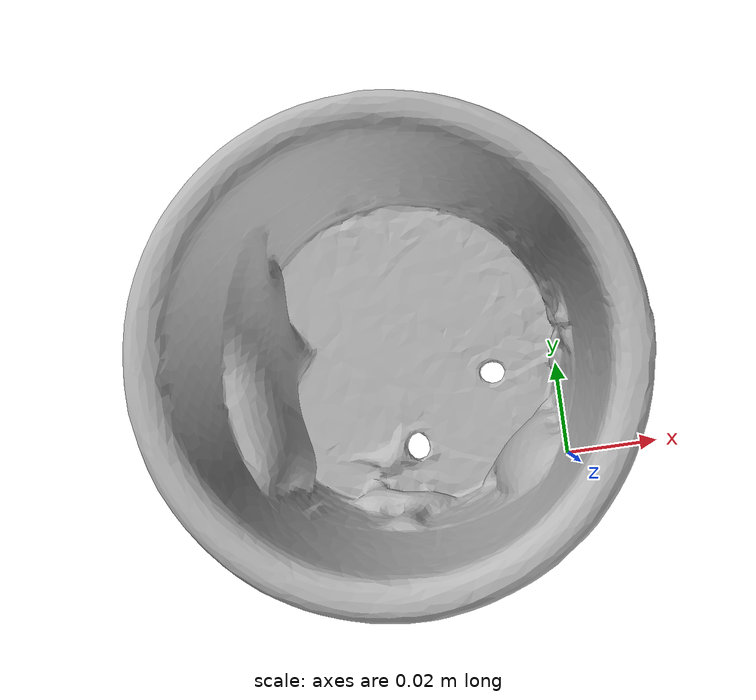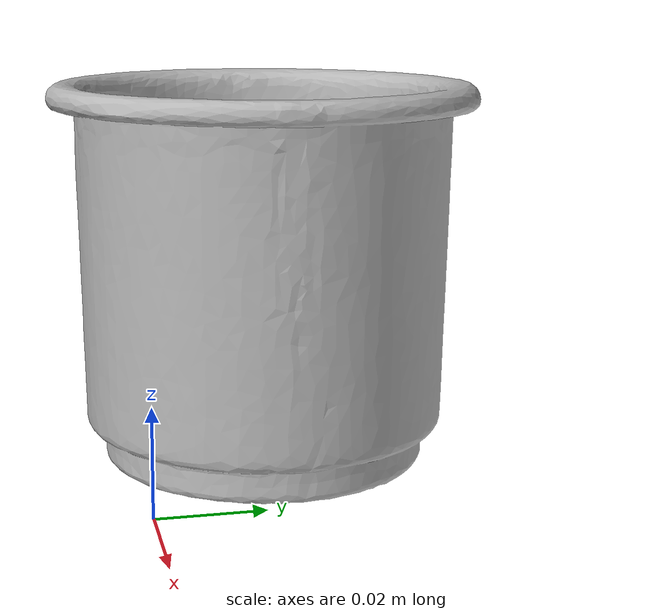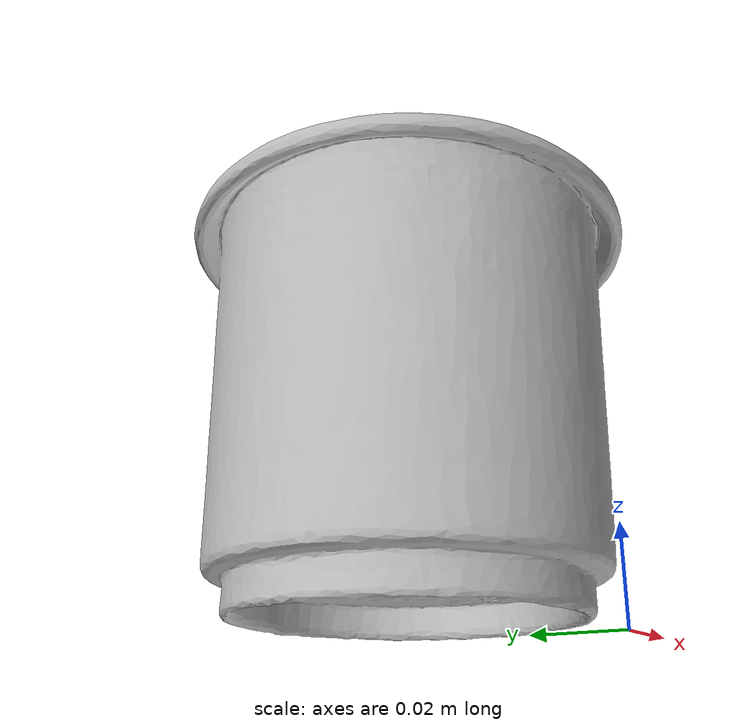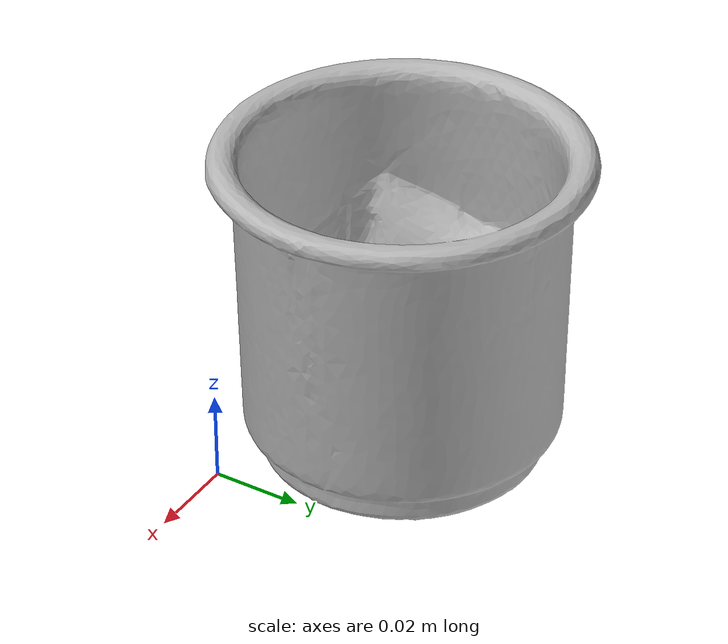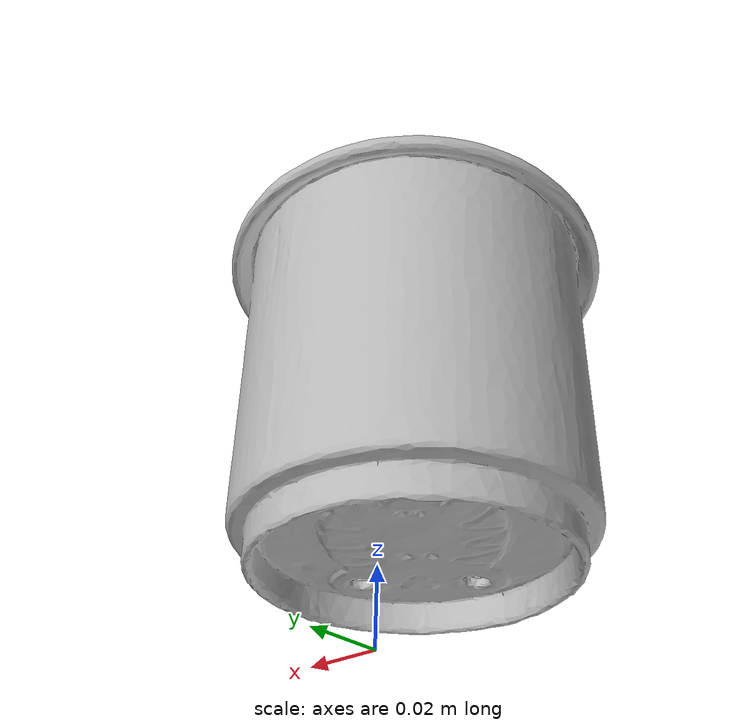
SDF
<?xml version='1.0'?>
<sdf version="1.4">
  <model name="f_cups">
    <static>false</static>
    <link name="link">
      <inertial>
        <pose>-0.037522782492078806 0.024731456379195844 0.03143344870002347 -2.093092325083727 0.9411196106052447 0.9604650744273908</pose>
        <mass>4.948022931304318e-05</mass>
        <inertia>
          <ixx>5.0819720797133996e-08</ixx>
          <ixy>2.476913679251216e-24</ixy>
          <ixz>6.867677012503945e-24</ixz>
          <iyy>4.811740055054633e-08</iyy>
          <iyz>2.9360017211969356e-25</iyz>
          <izz>4.360842576802855e-08</izz>
        </inertia>
      </inertial>
      <collision name="collision">
        <geometry>
          <mesh>
            <!-- Use a downsampled mesh for collisions -->
            <uri>model://065-f_cups/google_16k/065-f_cups.obj</uri>
            </mesh>
        </geometry>
        <surface>
          <friction>
            <ode>
              <mu>0.9</mu>
              <mu2>0.9</mu2>
            </ode>
          </friction>
          <contact>
            <ode>
              <kp>1000000000000.0</kp>
              <kd>1</kd>
              <min_depth>0.0001</min_depth>
              <max_vel>0.01</max_vel>
            </ode>
          </contact>
          <bounce>
            <restitution_coefficient>0.1</restitution_coefficient>
            <threshold>1000.0</threshold>
          </bounce>
        </surface>
      </collision>
      <visual name="visual">
        <geometry>
          <mesh>
            <uri>model://065-f_cups/google_16k/065-f_cups.dae</uri>
            </mesh>
        </geometry>
      </visual>
    </link>
  </model>
</sdf>
